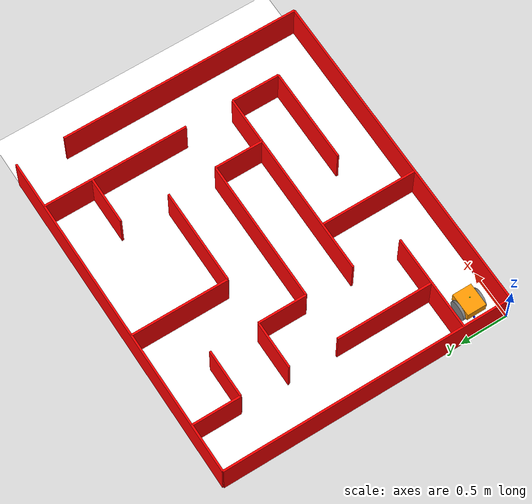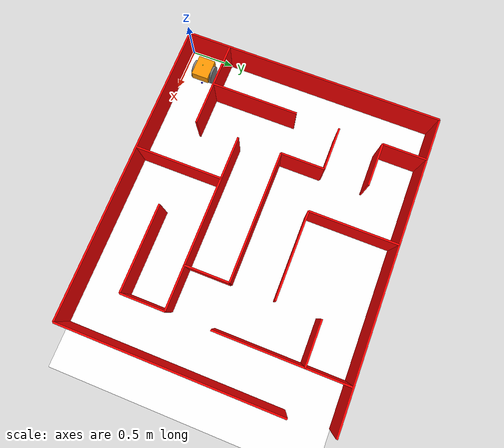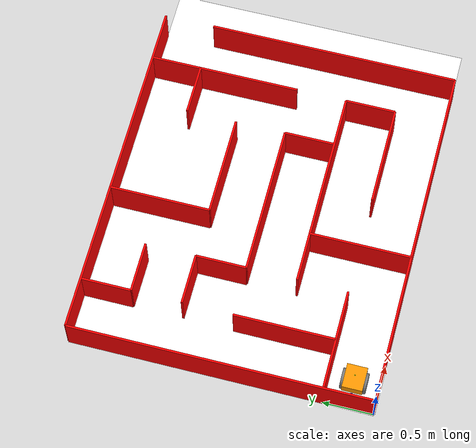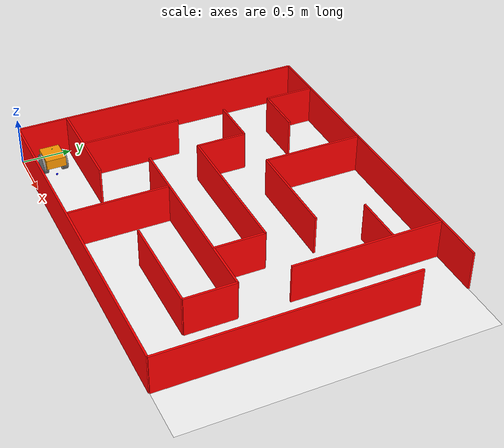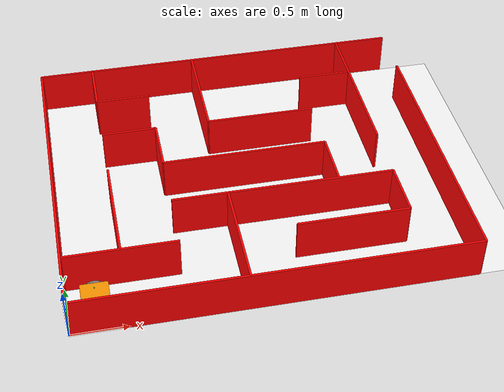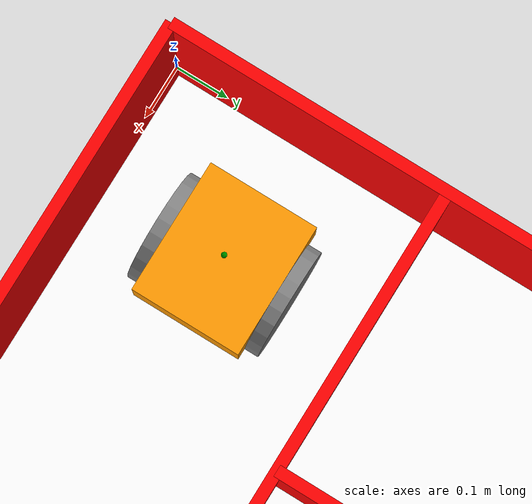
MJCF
<mujoco>
    <include file="robot.xml"/>
    <option timestep="0.001" integrator="RK4" gravity="0 0 -9.81" />

    <worldbody>
        <geom name="ground" type="plane" size="2 1.5 0.1" pos="2 1.5 0" rgba="1 1 1 .3"/>
        <body name="labirint">
            <geom type="box" size=".01 1.5 0.2" pos="0 1.5 .2" rgba="1 0 0 1"/>
            <geom type="box" size="1.75 .01 0.2" pos="1.75 3 .2" rgba="1 0 0 1"/>
            <geom type="box" size="1.75 .01 0.2" pos="1.75 0 .2" rgba="1 0 0 1"/>
            <geom type="box" size=".01 1.25 0.2" pos="3.5 1.25 .2" rgba="1 0 0 1"/>

            <geom type="box" size=".5 .01 0.2" pos=".5 .5 .2" rgba="1 0 0 1"/>
            <geom type="box" size=".5 .01 0.2" pos="2.5 .5 .2" rgba="1 0 0 1"/>
            <geom type="box" size="1 .01 0.2" pos="2 1 .2" rgba="1 0 0 1"/>
            <geom type="box" size=".75 .01 0.2" pos="1.75 1.5 .2" rgba="1 0 0 1"/>
            <geom type="box" size=".5 .01 0.2" pos="2 2 .2" rgba="1 0 0 1"/>
            <geom type="box" size=".25 .01 0.2" pos=".75 2 .2" rgba="1 0 0 1"/>
            <geom type="box" size=".25 .01 0.2" pos="2.75 2.5 .2" rgba="1 0 0 1"/>
            <geom type="box" size=".25 .01 0.2" pos=".75 2.5 .2" rgba="1 0 0 1"/>

            <geom type="box" size=".01 .5 0.2" pos=".5 1 .2" rgba="1 0 0 1"/>
            <geom type="box" size=".01 .5 0.2" pos="1.5 .5 .2" rgba="1 0 0 1"/>
            <geom type="box" size=".01 .5 0.2" pos="1.5 2.5 .2" rgba="1 0 0 1"/>
            <geom type="box" size=".01 .25 0.2" pos=".5 2.75 .2" rgba="1 0 0 1"/>
            <geom type="box" size=".01 .25 0.2" pos="1 1.75 .2" rgba="1 0 0 1"/>
            <geom type="box" size=".01 .25 0.2" pos="2.5 1.25 .2" rgba="1 0 0 1"/>
            <geom type="box" size=".01 .25 0.2" pos="3 .75 .2" rgba="1 0 0 1"/>
            <geom type="box" size=".01 .75 0.2" pos="3 2.25 .2" rgba="1 0 0 1"/>
        </body>
    </worldbody>

</mujoco>

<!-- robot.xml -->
<mujoco>

    <worldbody>
        <body name="base" pos=".25 .25 .15">
            <joint type="free"/>
            <geom type="box" size=".12 .1 .05" rgba="1 .6 0 1"/>
            <geom type="box" size=".03 .1 .045" rgba="1 .4 0 0" pos="-.12 0 -.09"/>

            <site name="lidar_r" pos="0 0 .1" rgba="0 1 0 1" quat=".707 .707 0 0"/>
            <site name="lidar_l" pos="0 0 .1" rgba="0 1 0 1" quat=".707 -.707 0 0"/>
            <site name="lidar_l_45" pos="0 0 .1" rgba="0 1 0 1" quat=".2706 .2706 .6533 .6533"/>
            <site name="lidar_r_45" pos="0 0 .1" rgba="0 1 0 1" quat=".6533 .6533 .2706 .2706"/>
            <site name="lidar_f" pos="0 0 .1" rgba="0 1 0 1" quat=".5 .5 .5 .5"/>
            <site name="lidar_b" pos="0 0 .1" rgba="0 1 0 1" quat=".5 -.5 -.5 .5"/>

            <body name="wheel_left" pos="0 .075 -.05">
                <joint name="left" axis="0 1 0"/>
                <geom type="cylinder" size=".1" fromto="0 0 0 0 .05 0"/>
            </body>
            <body name="wheel_right" pos="0 -.075 -.05">
                <joint name="right" axis="0 1 0"/>
                <geom type="cylinder" size=".1" fromto="0 0 0 0 -.05 0"/>
            </body>
            <body name="ball" pos="-.1 0 -.14">
                <joint type="ball"/>
                <geom type="sphere" size=".01" rgba="0 0 1 1"/>
            </body>
            <body name="ball1" pos=".1 0 -.14">
                <joint type="ball"/>
                <geom type="sphere" size=".01" rgba="0 0 1 1"/>
            </body>
        </body>
    </worldbody>

    <actuator>
        <velocity name="motor_left" joint="left" kv="10" ctrlrange="-20 20"/>
        <velocity name="motor_right" joint="right" kv="10" ctrlrange="-20 20"/>
    </actuator>

    <sensor>
        <rangefinder name="lidar_r" site="lidar_r" cutoff="10"/>
        <rangefinder name="lidar_l" site="lidar_l" cutoff="10"/>
        <rangefinder name="lidar_l_45" site="lidar_l_45" cutoff="10"/>
        <rangefinder name="lidar_r_45" site="lidar_r_45" cutoff="10"/>
        <rangefinder name="lidar_f" site="lidar_f" cutoff="10"/>
        <rangefinder name="lidar_b" site="lidar_b" cutoff="10"/>
    </sensor>

</mujoco>
